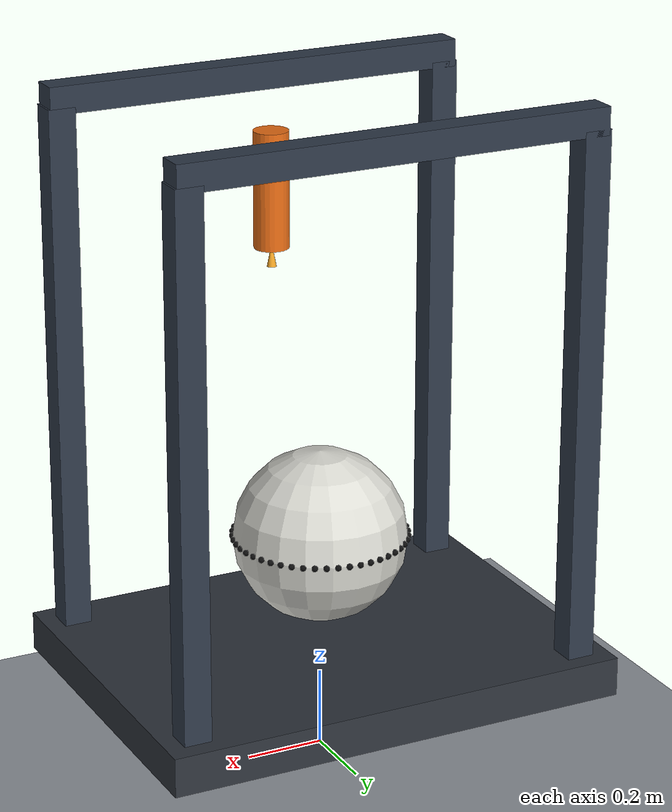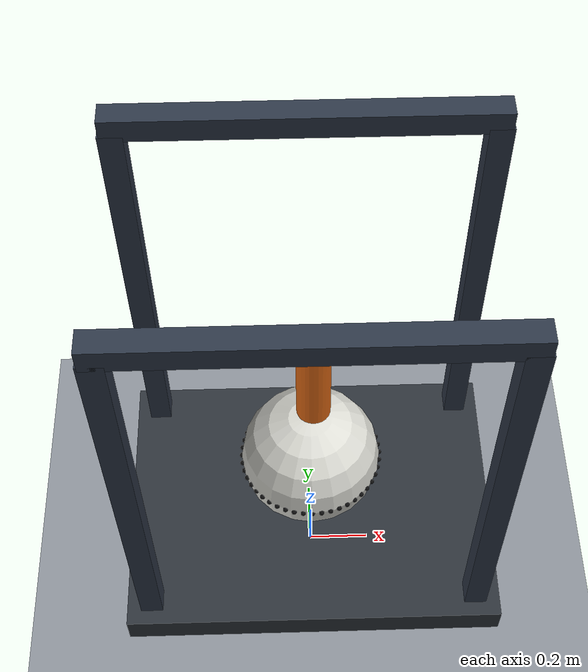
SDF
<?xml version='1.0' encoding='utf-8'?>
<sdf version="1.9">
  <world name="football_gumming_world">
    <physics name="default_physics" type="ignored">
      <max_step_size>0.001</max_step_size>
      <real_time_factor>1.0</real_time_factor>
    </physics>
    <plugin filename="gz-sim-physics-system" name="gz::sim::systems::Physics" />
    <plugin filename="gz-sim-scene-broadcaster-system" name="gz::sim::systems::SceneBroadcaster" />
    <light name="sun" type="directional">
      <pose>0 0 8 0 0 0</pose>
      <direction>-0.5 0.2 -1</direction>
      <diffuse>0.9 0.9 0.9 1</diffuse>
      <specular>0.2 0.2 0.2 1</specular>
    </light>
    <model name="ground">
      <static>true</static>
      <link name="ground_link">
        <collision name="ground_collision">
          <geometry>
            <plane>
              <normal>0 0 1</normal>
              <size>10 10</size>
            </plane>
          </geometry>
        </collision>
        <visual name="ground_visual">
          <geometry>
            <plane>
              <normal>0 0 1</normal>
              <size>10 10</size>
            </plane>
          </geometry>
          <material>
            <ambient>0.55 0.57 0.60 1</ambient>
            <diffuse>0.55 0.57 0.60 1</diffuse>
          </material>
        </visual>
      </link>
    </model>
    <model name="machine_platform">
      <static>true</static>
      <pose>0 0 0.25 0 0 0</pose>
      <link name="platform">
        <visual name="platform_visual">
          <geometry>
            <box>
              <size>1.2 0.9 0.10</size>
            </box>
          </geometry>
          <material>
            <ambient>0.18 0.20 0.23 1</ambient>
            <diffuse>0.18 0.20 0.23 1</diffuse>
          </material>
        </visual>
        <collision name="platform_collision">
          <geometry>
            <box>
              <size>1.2 0.9 0.10</size>
            </box>
          </geometry>
        </collision>
      </link>
    </model>
    <model name="left_front_post">
      <static>true</static>
      <pose>-0.52 -0.37 0.95 0 0 0</pose>
      <link name="link">
        <visual name="visual">
          <geometry>
            <box>
              <size>0.07 0.07 1.4</size>
            </box>
          </geometry>
          <material>
            <ambient>0.18 0.22 0.28 1</ambient>
            <diffuse>0.18 0.22 0.28 1</diffuse>
          </material>
        </visual>
      </link>
    </model>
    <model name="left_back_post">
      <static>true</static>
      <pose>-0.52 0.37 0.95 0 0 0</pose>
      <link name="link">
        <visual name="visual">
          <geometry>
            <box>
              <size>0.07 0.07 1.4</size>
            </box>
          </geometry>
          <material>
            <ambient>0.18 0.22 0.28 1</ambient>
            <diffuse>0.18 0.22 0.28 1</diffuse>
          </material>
        </visual>
      </link>
    </model>
    <model name="right_front_post">
      <static>true</static>
      <pose>0.52 -0.37 0.95 0 0 0</pose>
      <link name="link">
        <visual name="visual">
          <geometry>
            <box>
              <size>0.07 0.07 1.4</size>
            </box>
          </geometry>
          <material>
            <ambient>0.18 0.22 0.28 1</ambient>
            <diffuse>0.18 0.22 0.28 1</diffuse>
          </material>
        </visual>
      </link>
    </model>
    <model name="right_back_post">
      <static>true</static>
      <pose>0.52 0.37 0.95 0 0 0</pose>
      <link name="link">
        <visual name="visual">
          <geometry>
            <box>
              <size>0.07 0.07 1.4</size>
            </box>
          </geometry>
          <material>
            <ambient>0.18 0.22 0.28 1</ambient>
            <diffuse>0.18 0.22 0.28 1</diffuse>
          </material>
        </visual>
      </link>
    </model>
    <model name="top_front_beam">
      <static>true</static>
      <pose>0 -0.37 1.67 0 0 0</pose>
      <link name="link">
        <visual name="visual">
          <geometry>
            <box>
              <size>1.1 0.07 0.07</size>
            </box>
          </geometry>
          <material>
            <ambient>0.18 0.22 0.28 1</ambient>
            <diffuse>0.18 0.22 0.28 1</diffuse>
          </material>
        </visual>
      </link>
    </model>
    <model name="top_back_beam">
      <static>true</static>
      <pose>0 0.37 1.67 0 0 0</pose>
      <link name="link">
        <visual name="visual">
          <geometry>
            <box>
              <size>1.1 0.07 0.07</size>
            </box>
          </geometry>
          <material>
            <ambient>0.18 0.22 0.28 1</ambient>
            <diffuse>0.18 0.22 0.28 1</diffuse>
          </material>
        </visual>
      </link>
    </model>
    <model name="football">
      <static>true</static>
      <pose>0 0 0.58 0 0 0</pose>
      <link name="ball">
        <visual name="ball_visual">
          <geometry>
            <sphere>
              <radius>0.22</radius>
            </sphere>
          </geometry>
          <material>
            <ambient>0.85 0.85 0.82 1</ambient>
            <diffuse>0.85 0.85 0.82 1</diffuse>
          </material>
        </visual>
        <collision name="ball_collision">
          <geometry>
            <sphere>
              <radius>0.22</radius>
            </sphere>
          </geometry>
        </collision>
        <visual name="seam_0">
          <pose>0.21900 0.00000 0 0 0 0</pose>
          <geometry>
            <sphere>
              <radius>0.008</radius>
            </sphere>
          </geometry>
          <material>
            <ambient>0.05 0.05 0.05 1</ambient>
            <diffuse>0.05 0.05 0.05 1</diffuse>
          </material>
        </visual>
        <visual name="seam_1">
          <pose>0.21713 0.02859 0 0 0 0</pose>
          <geometry>
            <sphere>
              <radius>0.008</radius>
            </sphere>
          </geometry>
          <material>
            <ambient>0.05 0.05 0.05 1</ambient>
            <diffuse>0.05 0.05 0.05 1</diffuse>
          </material>
        </visual>
        <visual name="seam_2">
          <pose>0.21154 0.05668 0 0 0 0</pose>
          <geometry>
            <sphere>
              <radius>0.008</radius>
            </sphere>
          </geometry>
          <material>
            <ambient>0.05 0.05 0.05 1</ambient>
            <diffuse>0.05 0.05 0.05 1</diffuse>
          </material>
        </visual>
        <visual name="seam_3">
          <pose>0.20233 0.08381 0 0 0 0</pose>
          <geometry>
            <sphere>
              <radius>0.008</radius>
            </sphere>
          </geometry>
          <material>
            <ambient>0.05 0.05 0.05 1</ambient>
            <diffuse>0.05 0.05 0.05 1</diffuse>
          </material>
        </visual>
        <visual name="seam_4">
          <pose>0.18966 0.10950 0 0 0 0</pose>
          <geometry>
            <sphere>
              <radius>0.008</radius>
            </sphere>
          </geometry>
          <material>
            <ambient>0.05 0.05 0.05 1</ambient>
            <diffuse>0.05 0.05 0.05 1</diffuse>
          </material>
        </visual>
        <visual name="seam_5">
          <pose>0.17374 0.13332 0 0 0 0</pose>
          <geometry>
            <sphere>
              <radius>0.008</radius>
            </sphere>
          </geometry>
          <material>
            <ambient>0.05 0.05 0.05 1</ambient>
            <diffuse>0.05 0.05 0.05 1</diffuse>
          </material>
        </visual>
        <visual name="seam_6">
          <pose>0.15486 0.15486 0 0 0 0</pose>
          <geometry>
            <sphere>
              <radius>0.008</radius>
            </sphere>
          </geometry>
          <material>
            <ambient>0.05 0.05 0.05 1</ambient>
            <diffuse>0.05 0.05 0.05 1</diffuse>
          </material>
        </visual>
        <visual name="seam_7">
          <pose>0.13332 0.17374 0 0 0 0</pose>
          <geometry>
            <sphere>
              <radius>0.008</radius>
            </sphere>
          </geometry>
          <material>
            <ambient>0.05 0.05 0.05 1</ambient>
            <diffuse>0.05 0.05 0.05 1</diffuse>
          </material>
        </visual>
        <visual name="seam_8">
          <pose>0.10950 0.18966 0 0 0 0</pose>
          <geometry>
            <sphere>
              <radius>0.008</radius>
            </sphere>
          </geometry>
          <material>
            <ambient>0.05 0.05 0.05 1</ambient>
            <diffuse>0.05 0.05 0.05 1</diffuse>
          </material>
        </visual>
        <visual name="seam_9">
          <pose>0.08381 0.20233 0 0 0 0</pose>
          <geometry>
            <sphere>
              <radius>0.008</radius>
            </sphere>
          </geometry>
          <material>
            <ambient>0.05 0.05 0.05 1</ambient>
            <diffuse>0.05 0.05 0.05 1</diffuse>
          </material>
        </visual>
        <visual name="seam_10">
          <pose>0.05668 0.21154 0 0 0 0</pose>
          <geometry>
            <sphere>
              <radius>0.008</radius>
            </sphere>
          </geometry>
          <material>
            <ambient>0.05 0.05 0.05 1</ambient>
            <diffuse>0.05 0.05 0.05 1</diffuse>
          </material>
        </visual>
        <visual name="seam_11">
          <pose>0.02859 0.21713 0 0 0 0</pose>
          <geometry>
            <sphere>
              <radius>0.008</radius>
            </sphere>
          </geometry>
          <material>
            <ambient>0.05 0.05 0.05 1</ambient>
            <diffuse>0.05 0.05 0.05 1</diffuse>
          </material>
        </visual>
        <visual name="seam_12">
          <pose>0.00000 0.21900 0 0 0 0</pose>
          <geometry>
            <sphere>
              <radius>0.008</radius>
            </sphere>
          </geometry>
          <material>
            <ambient>0.05 0.05 0.05 1</ambient>
            <diffuse>0.05 0.05 0.05 1</diffuse>
          </material>
        </visual>
        <visual name="seam_13">
          <pose>-0.02859 0.21713 0 0 0 0</pose>
          <geometry>
            <sphere>
              <radius>0.008</radius>
            </sphere>
          </geometry>
          <material>
            <ambient>0.05 0.05 0.05 1</ambient>
            <diffuse>0.05 0.05 0.05 1</diffuse>
          </material>
        </visual>
        <visual name="seam_14">
          <pose>-0.05668 0.21154 0 0 0 0</pose>
          <geometry>
            <sphere>
              <radius>0.008</radius>
            </sphere>
          </geometry>
          <material>
            <ambient>0.05 0.05 0.05 1</ambient>
            <diffuse>0.05 0.05 0.05 1</diffuse>
          </material>
        </visual>
        <visual name="seam_15">
          <pose>-0.08381 0.20233 0 0 0 0</pose>
          <geometry>
            <sphere>
              <radius>0.008</radius>
            </sphere>
          </geometry>
          <material>
            <ambient>0.05 0.05 0.05 1</ambient>
            <diffuse>0.05 0.05 0.05 1</diffuse>
          </material>
        </visual>
        <visual name="seam_16">
          <pose>-0.10950 0.18966 0 0 0 0</pose>
          <geometry>
            <sphere>
              <radius>0.008</radius>
            </sphere>
          </geometry>
          <material>
            <ambient>0.05 0.05 0.05 1</ambient>
            <diffuse>0.05 0.05 0.05 1</diffuse>
          </material>
        </visual>
        <visual name="seam_17">
          <pose>-0.13332 0.17374 0 0 0 0</pose>
          <geometry>
            <sphere>
              <radius>0.008</radius>
            </sphere>
          </geometry>
          <material>
            <ambient>0.05 0.05 0.05 1</ambient>
            <diffuse>0.05 0.05 0.05 1</diffuse>
          </material>
        </visual>
        <visual name="seam_18">
          <pose>-0.15486 0.15486 0 0 0 0</pose>
          <geometry>
            <sphere>
              <radius>0.008</radius>
            </sphere>
          </geometry>
          <material>
            <ambient>0.05 0.05 0.05 1</ambient>
            <diffuse>0.05 0.05 0.05 1</diffuse>
          </material>
        </visual>
        <visual name="seam_19">
          <pose>-0.17374 0.13332 0 0 0 0</pose>
          <geometry>
            <sphere>
              <radius>0.008</radius>
            </sphere>
          </geometry>
          <material>
            <ambient>0.05 0.05 0.05 1</ambient>
            <diffuse>0.05 0.05 0.05 1</diffuse>
          </material>
        </visual>
        <visual name="seam_20">
          <pose>-0.18966 0.10950 0 0 0 0</pose>
          <geometry>
            <sphere>
              <radius>0.008</radius>
            </sphere>
          </geometry>
          <material>
            <ambient>0.05 0.05 0.05 1</ambient>
            <diffuse>0.05 0.05 0.05 1</diffuse>
          </material>
        </visual>
        <visual name="seam_21">
          <pose>-0.20233 0.08381 0 0 0 0</pose>
          <geometry>
            <sphere>
              <radius>0.008</radius>
            </sphere>
          </geometry>
          <material>
            <ambient>0.05 0.05 0.05 1</ambient>
            <diffuse>0.05 0.05 0.05 1</diffuse>
          </material>
        </visual>
        <visual name="seam_22">
          <pose>-0.21154 0.05668 0 0 0 0</pose>
          <geometry>
            <sphere>
              <radius>0.008</radius>
            </sphere>
          </geometry>
          <material>
            <ambient>0.05 0.05 0.05 1</ambient>
            <diffuse>0.05 0.05 0.05 1</diffuse>
          </material>
        </visual>
        <visual name="seam_23">
          <pose>-0.21713 0.02859 0 0 0 0</pose>
          <geometry>
            <sphere>
              <radius>0.008</radius>
            </sphere>
          </geometry>
          <material>
            <ambient>0.05 0.05 0.05 1</ambient>
            <diffuse>0.05 0.05 0.05 1</diffuse>
          </material>
        </visual>
        <visual name="seam_24">
          <pose>-0.21900 0.00000 0 0 0 0</pose>
          <geometry>
            <sphere>
              <radius>0.008</radius>
            </sphere>
          </geometry>
          <material>
            <ambient>0.05 0.05 0.05 1</ambient>
            <diffuse>0.05 0.05 0.05 1</diffuse>
          </material>
        </visual>
        <visual name="seam_25">
          <pose>-0.21713 -0.02859 0 0 0 0</pose>
          <geometry>
            <sphere>
              <radius>0.008</radius>
            </sphere>
          </geometry>
          <material>
            <ambient>0.05 0.05 0.05 1</ambient>
            <diffuse>0.05 0.05 0.05 1</diffuse>
          </material>
        </visual>
        <visual name="seam_26">
          <pose>-0.21154 -0.05668 0 0 0 0</pose>
          <geometry>
            <sphere>
              <radius>0.008</radius>
            </sphere>
          </geometry>
          <material>
            <ambient>0.05 0.05 0.05 1</ambient>
            <diffuse>0.05 0.05 0.05 1</diffuse>
          </material>
        </visual>
        <visual name="seam_27">
          <pose>-0.20233 -0.08381 0 0 0 0</pose>
          <geometry>
            <sphere>
              <radius>0.008</radius>
            </sphere>
          </geometry>
          <material>
            <ambient>0.05 0.05 0.05 1</ambient>
            <diffuse>0.05 0.05 0.05 1</diffuse>
          </material>
        </visual>
        <visual name="seam_28">
          <pose>-0.18966 -0.10950 0 0 0 0</pose>
          <geometry>
            <sphere>
              <radius>0.008</radius>
            </sphere>
          </geometry>
          <material>
            <ambient>0.05 0.05 0.05 1</ambient>
            <diffuse>0.05 0.05 0.05 1</diffuse>
          </material>
        </visual>
        <visual name="seam_29">
          <pose>-0.17374 -0.13332 0 0 0 0</pose>
          <geometry>
            <sphere>
              <radius>0.008</radius>
            </sphere>
          </geometry>
          <material>
            <ambient>0.05 0.05 0.05 1</ambient>
            <diffuse>0.05 0.05 0.05 1</diffuse>
          </material>
        </visual>
        <visual name="seam_30">
          <pose>-0.15486 -0.15486 0 0 0 0</pose>
          <geometry>
            <sphere>
              <radius>0.008</radius>
            </sphere>
          </geometry>
          <material>
            <ambient>0.05 0.05 0.05 1</ambient>
            <diffuse>0.05 0.05 0.05 1</diffuse>
          </material>
        </visual>
        <visual name="seam_31">
          <pose>-0.13332 -0.17374 0 0 0 0</pose>
          <geometry>
            <sphere>
              <radius>0.008</radius>
            </sphere>
          </geometry>
          <material>
            <ambient>0.05 0.05 0.05 1</ambient>
            <diffuse>0.05 0.05 0.05 1</diffuse>
          </material>
        </visual>
        <visual name="seam_32">
          <pose>-0.10950 -0.18966 0 0 0 0</pose>
          <geometry>
            <sphere>
              <radius>0.008</radius>
            </sphere>
          </geometry>
          <material>
            <ambient>0.05 0.05 0.05 1</ambient>
            <diffuse>0.05 0.05 0.05 1</diffuse>
          </material>
        </visual>
        <visual name="seam_33">
          <pose>-0.08381 -0.20233 0 0 0 0</pose>
          <geometry>
            <sphere>
              <radius>0.008</radius>
            </sphere>
          </geometry>
          <material>
            <ambient>0.05 0.05 0.05 1</ambient>
            <diffuse>0.05 0.05 0.05 1</diffuse>
          </material>
        </visual>
        <visual name="seam_34">
          <pose>-0.05668 -0.21154 0 0 0 0</pose>
          <geometry>
            <sphere>
              <radius>0.008</radius>
            </sphere>
          </geometry>
          <material>
            <ambient>0.05 0.05 0.05 1</ambient>
            <diffuse>0.05 0.05 0.05 1</diffuse>
          </material>
        </visual>
        <visual name="seam_35">
          <pose>-0.02859 -0.21713 0 0 0 0</pose>
          <geometry>
            <sphere>
              <radius>0.008</radius>
            </sphere>
          </geometry>
          <material>
            <ambient>0.05 0.05 0.05 1</ambient>
            <diffuse>0.05 0.05 0.05 1</diffuse>
          </material>
        </visual>
        <visual name="seam_36">
          <pose>-0.00000 -0.21900 0 0 0 0</pose>
          <geometry>
            <sphere>
              <radius>0.008</radius>
            </sphere>
          </geometry>
          <material>
            <ambient>0.05 0.05 0.05 1</ambient>
            <diffuse>0.05 0.05 0.05 1</diffuse>
          </material>
        </visual>
        <visual name="seam_37">
          <pose>0.02859 -0.21713 0 0 0 0</pose>
          <geometry>
            <sphere>
              <radius>0.008</radius>
            </sphere>
          </geometry>
          <material>
            <ambient>0.05 0.05 0.05 1</ambient>
            <diffuse>0.05 0.05 0.05 1</diffuse>
          </material>
        </visual>
        <visual name="seam_38">
          <pose>0.05668 -0.21154 0 0 0 0</pose>
          <geometry>
            <sphere>
              <radius>0.008</radius>
            </sphere>
          </geometry>
          <material>
            <ambient>0.05 0.05 0.05 1</ambient>
            <diffuse>0.05 0.05 0.05 1</diffuse>
          </material>
        </visual>
        <visual name="seam_39">
          <pose>0.08381 -0.20233 0 0 0 0</pose>
          <geometry>
            <sphere>
              <radius>0.008</radius>
            </sphere>
          </geometry>
          <material>
            <ambient>0.05 0.05 0.05 1</ambient>
            <diffuse>0.05 0.05 0.05 1</diffuse>
          </material>
        </visual>
        <visual name="seam_40">
          <pose>0.10950 -0.18966 0 0 0 0</pose>
          <geometry>
            <sphere>
              <radius>0.008</radius>
            </sphere>
          </geometry>
          <material>
            <ambient>0.05 0.05 0.05 1</ambient>
            <diffuse>0.05 0.05 0.05 1</diffuse>
          </material>
        </visual>
        <visual name="seam_41">
          <pose>0.13332 -0.17374 0 0 0 0</pose>
          <geometry>
            <sphere>
              <radius>0.008</radius>
            </sphere>
          </geometry>
          <material>
            <ambient>0.05 0.05 0.05 1</ambient>
            <diffuse>0.05 0.05 0.05 1</diffuse>
          </material>
        </visual>
        <visual name="seam_42">
          <pose>0.15486 -0.15486 0 0 0 0</pose>
          <geometry>
            <sphere>
              <radius>0.008</radius>
            </sphere>
          </geometry>
          <material>
            <ambient>0.05 0.05 0.05 1</ambient>
            <diffuse>0.05 0.05 0.05 1</diffuse>
          </material>
        </visual>
        <visual name="seam_43">
          <pose>0.17374 -0.13332 0 0 0 0</pose>
          <geometry>
            <sphere>
              <radius>0.008</radius>
            </sphere>
          </geometry>
          <material>
            <ambient>0.05 0.05 0.05 1</ambient>
            <diffuse>0.05 0.05 0.05 1</diffuse>
          </material>
        </visual>
        <visual name="seam_44">
          <pose>0.18966 -0.10950 0 0 0 0</pose>
          <geometry>
            <sphere>
              <radius>0.008</radius>
            </sphere>
          </geometry>
          <material>
            <ambient>0.05 0.05 0.05 1</ambient>
            <diffuse>0.05 0.05 0.05 1</diffuse>
          </material>
        </visual>
        <visual name="seam_45">
          <pose>0.20233 -0.08381 0 0 0 0</pose>
          <geometry>
            <sphere>
              <radius>0.008</radius>
            </sphere>
          </geometry>
          <material>
            <ambient>0.05 0.05 0.05 1</ambient>
            <diffuse>0.05 0.05 0.05 1</diffuse>
          </material>
        </visual>
        <visual name="seam_46">
          <pose>0.21154 -0.05668 0 0 0 0</pose>
          <geometry>
            <sphere>
              <radius>0.008</radius>
            </sphere>
          </geometry>
          <material>
            <ambient>0.05 0.05 0.05 1</ambient>
            <diffuse>0.05 0.05 0.05 1</diffuse>
          </material>
        </visual>
        <visual name="seam_47">
          <pose>0.21713 -0.02859 0 0 0 0</pose>
          <geometry>
            <sphere>
              <radius>0.008</radius>
            </sphere>
          </geometry>
          <material>
            <ambient>0.05 0.05 0.05 1</ambient>
            <diffuse>0.05 0.05 0.05 1</diffuse>
          </material>
        </visual>
      </link>
    </model>
    <model name="gum_nozzle">
      <static>true</static>
      <pose>0 -0.27 1.40 0 0 0</pose>
      <link name="nozzle">
        <visual name="nozzle_body">
          <geometry>
            <cylinder>
              <radius>0.045</radius>
              <length>0.30</length>
            </cylinder>
          </geometry>
          <material>
            <ambient>0.90 0.42 0.08 1</ambient>
            <diffuse>0.90 0.42 0.08 1</diffuse>
          </material>
        </visual>
        <visual name="nozzle_tip">
          <pose>0 0 -0.17 0 0 0</pose>
          <geometry>
            <cone>
              <radius>0.012</radius>
              <length>0.06</length>
            </cone>
          </geometry>
          <material>
            <ambient>0.95 0.65 0.15 1</ambient>
            <diffuse>0.95 0.65 0.15 1</diffuse>
          </material>
        </visual>
      </link>
    </model>
  </world>
</sdf>
